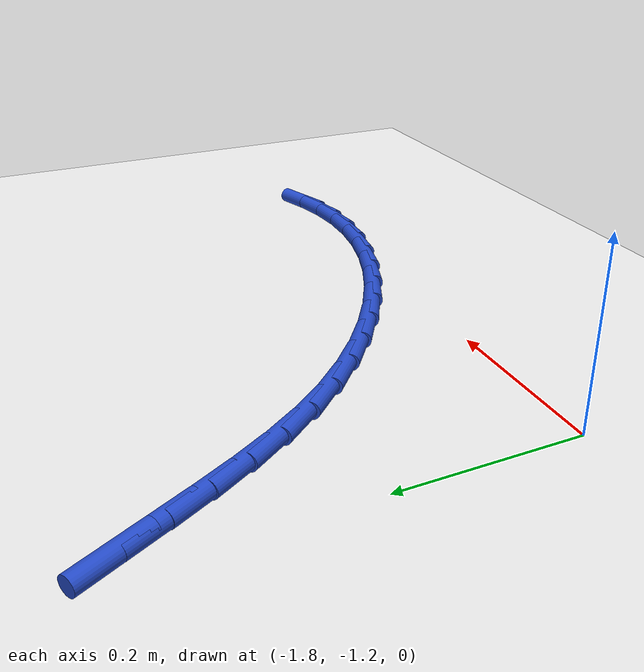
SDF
<sdf version="1.6">
 <world name="default">
  <model name="ground_plane">
   <static>1</static>
   <link name="link">
    <collision name="collision">
     <geometry><plane><normal>0 0 1</normal><size>100 100</size></plane></geometry>
     <surface><friction><ode><mu>100</mu><mu2>50</mu2></ode></friction></surface>
    </collision>
    <visual name="visual">
     <cast_shadows>0</cast_shadows>
     <geometry><plane><normal>0 0 1</normal><size>100 100</size></plane></geometry>
     <material>
      <script><uri>file://media/materials/scripts/gazebo.material</uri><name>Gazebo/WhiteGlow</name></script>
     </material>
    </visual>
   </link>
  </model>
  <model name="line">
   <link name="link_94">
    <pose>-1.7862081489622976 -0.7743923386077 0.01 0 1.57 -1.0999433509527803</pose>
    <collision name="collision">
     <geometry><cylinder><radius>0.01</radius><length>0.08</length></cylinder></geometry>
    </collision>
    <visual name="visual">
     <material>
      <script><name>Gazebo/Blue</name><uri>file://media/materials/scripts/gazebo.material</uri></script>
     </material>
     <geometry><cylinder><radius>0.01</radius><length>0.08</length></cylinder></geometry>
    </visual>
   </link>
   <link name="link_95">
    <pose>-1.7653485098583743 -0.8153707733331547 0.01 0 1.57 -1.0980128240945162</pose>
    <collision name="collision">
     <geometry><cylinder><radius>0.01</radius><length>0.08</length></cylinder></geometry>
    </collision>
    <visual name="visual">
     <material>
      <script><name>Gazebo/Blue</name><uri>file://media/materials/scripts/gazebo.material</uri></script>
     </material>
     <geometry><cylinder><radius>0.01</radius><length>0.08</length></cylinder></geometry>
    </visual>
   </link>
   <link name="link_96">
    <pose>-1.744377399584192 -0.8563722083690302 0.01 0 1.57 -1.0762282834672172</pose>
    <collision name="collision">
     <geometry><cylinder><radius>0.01</radius><length>0.08</length></cylinder></geometry>
    </collision>
    <visual name="visual">
     <material>
      <script><name>Gazebo/Blue</name><uri>file://media/materials/scripts/gazebo.material</uri></script>
     </material>
     <geometry><cylinder><radius>0.01</radius><length>0.08</length></cylinder></geometry>
    </visual>
   </link>
   <link name="link_97">
    <pose>-1.7224845454410733 -0.8969693983839578 0.01 0 1.57 -1.0347250820600675</pose>
    <collision name="collision">
     <geometry><cylinder><radius>0.01</radius><length>0.08</length></cylinder></geometry>
    </collision>
    <visual name="visual">
     <material>
      <script><name>Gazebo/Blue</name><uri>file://media/materials/scripts/gazebo.material</uri></script>
     </material>
     <geometry><cylinder><radius>0.01</radius><length>0.08</length></cylinder></geometry>
    </visual>
   </link>
   <link name="link_98">
    <pose>-1.698859674730343 -0.9367350980465661 0.01 0 1.57 -0.9739318415360029</pose>
    <collision name="collision">
     <geometry><cylinder><radius>0.01</radius><length>0.08</length></cylinder></geometry>
    </collision>
    <visual name="visual">
     <material>
      <script><name>Gazebo/Blue</name><uri>file://media/materials/scripts/gazebo.material</uri></script>
     </material>
     <geometry><cylinder><radius>0.01</radius><length>0.08</length></cylinder></geometry>
    </visual>
   </link>
   <link name="link_99">
    <pose>-1.6726925147533227 -0.9752420620254849 0.01 0 1.57 -0.8952580154243821</pose>
    <collision name="collision">
     <geometry><cylinder><radius>0.01</radius><length>0.08</length></cylinder></geometry>
    </collision>
    <visual name="visual">
     <material>
      <script><name>Gazebo/Blue</name><uri>file://media/materials/scripts/gazebo.material</uri></script>
     </material>
     <geometry><cylinder><radius>0.01</radius><length>0.08</length></cylinder></geometry>
    </visual>
   </link>
   <link name="link_100">
    <pose>-1.6431866674633515 -1.0120641430836972 0.01 0 1.57 -0.8095339877894495</pose>
    <collision name="collision">
     <geometry><cylinder><radius>0.01</radius><length>0.08</length></cylinder></geometry>
    </collision>
    <visual name="visual">
     <material>
      <script><name>Gazebo/Blue</name><uri>file://media/materials/scripts/gazebo.material</uri></script>
     </material>
     <geometry><cylinder><radius>0.01</radius><length>0.08</length></cylinder></geometry>
    </visual>
   </link>
   <link name="link_101">
    <pose>-1.6100722895665418 -1.0468168675915588 0.01 0 1.57 -0.727741137765398</pose>
    <collision name="collision">
     <geometry><cylinder><radius>0.01</radius><length>0.08</length></cylinder></geometry>
    </collision>
    <visual name="visual">
     <material>
      <script><name>Gazebo/Blue</name><uri>file://media/materials/scripts/gazebo.material</uri></script>
     </material>
     <geometry><cylinder><radius>0.01</radius><length>0.08</length></cylinder></geometry>
    </visual>
   </link>
   <link name="link_102">
    <pose>-1.5737562241758765 -1.0791693175344657 0.01 0 1.57 -0.6488036194238563</pose>
    <collision name="collision">
     <geometry><cylinder><radius>0.01</radius><length>0.08</length></cylinder></geometry>
    </collision>
    <visual name="visual">
     <material>
      <script><name>Gazebo/Blue</name><uri>file://media/materials/scripts/gazebo.material</uri></script>
     </material>
     <geometry><cylinder><radius>0.01</radius><length>0.08</length></cylinder></geometry>
    </visual>
   </link>
   <link name="link_103">
    <pose>-1.534689808937433 -1.108794096369592 0.01 0 1.57 -0.5709550870534766</pose>
    <collision name="collision">
     <geometry><cylinder><radius>0.01</radius><length>0.08</length></cylinder></geometry>
    </collision>
    <visual name="visual">
     <material>
      <script><name>Gazebo/Blue</name><uri>file://media/materials/scripts/gazebo.material</uri></script>
     </material>
     <geometry><cylinder><radius>0.01</radius><length>0.08</length></cylinder></geometry>
    </visual>
   </link>
   <link name="link_104">
    <pose>-1.49332438149729 -1.1353638075541115 0.01 0 1.57 -0.4924808938426542</pose>
    <collision name="collision">
     <geometry><cylinder><radius>0.01</radius><length>0.08</length></cylinder></geometry>
    </collision>
    <visual name="visual">
     <material>
      <script><name>Gazebo/Blue</name><uri>file://media/materials/scripts/gazebo.material</uri></script>
     </material>
     <geometry><cylinder><radius>0.01</radius><length>0.08</length></cylinder></geometry>
    </visual>
   </link>
   <link name="link_105">
    <pose>-1.4501112795015232 -1.1585510545452005 0.01 0 1.57 -0.41167182553082954</pose>
    <collision name="collision">
     <geometry><cylinder><radius>0.01</radius><length>0.08</length></cylinder></geometry>
    </collision>
    <visual name="visual">
     <material>
      <script><name>Gazebo/Blue</name><uri>file://media/materials/scripts/gazebo.material</uri></script>
     </material>
     <geometry><cylinder><radius>0.01</radius><length>0.08</length></cylinder></geometry>
    </visual>
   </link>
   <link name="link_106">
    <pose>-1.4055018405962114 -1.1780284408000326 0.01 0 1.57 -0.3267862213521671</pose>
    <collision name="collision">
     <geometry><cylinder><radius>0.01</radius><length>0.08</length></cylinder></geometry>
    </collision>
    <visual name="visual">
     <material>
      <script><name>Gazebo/Blue</name><uri>file://media/materials/scripts/gazebo.material</uri></script>
     </material>
     <geometry><cylinder><radius>0.01</radius><length>0.08</length></cylinder></geometry>
    </visual>
   </link>
   <link name="link_107">
    <pose>-1.3599474024274314 -1.1934685697757825 0.01 0 1.57 -0.23603631850627765</pose>
    <collision name="collision">
     <geometry><cylinder><radius>0.01</radius><length>0.08</length></cylinder></geometry>
    </collision>
    <visual name="visual">
     <material>
      <script><name>Gazebo/Blue</name><uri>file://media/materials/scripts/gazebo.material</uri></script>
     </material>
     <geometry><cylinder><radius>0.01</radius><length>0.08</length></cylinder></geometry>
    </visual>
   </link>
   <link name="link_108">
    <pose>-1.31389930264126 -1.2045440449296252 0.01 0 1.57 -0.1376223688890179</pose>
    <collision name="collision">
     <geometry><cylinder><radius>0.01</radius><length>0.08</length></cylinder></geometry>
    </collision>
    <visual name="visual">
     <material>
      <script><name>Gazebo/Blue</name><uri>file://media/materials/scripts/gazebo.material</uri></script>
     </material>
     <geometry><cylinder><radius>0.01</radius><length>0.08</length></cylinder></geometry>
    </visual>
   </link>
   <link name="link_109">
    <pose>-1.2678088788837762 -1.2109274697187347 0.01 0 1.57 -0.029849620527401942</pose>
    <collision name="collision">
     <geometry><cylinder><radius>0.01</radius><length>0.08</length></cylinder></geometry>
    </collision>
    <visual name="visual">
     <material>
      <script><name>Gazebo/Blue</name><uri>file://media/materials/scripts/gazebo.material</uri></script>
     </material>
     <geometry><cylinder><radius>0.01</radius><length>0.08</length></cylinder></geometry>
    </visual>
   </link>
   <link name="link_110">
    <pose>-1.2221274688010564 -1.2122914476002862 0.01 0 1.57 0.08843173235602107</pose>
    <collision name="collision">
     <geometry><cylinder><radius>0.01</radius><length>0.08</length></cylinder></geometry>
    </collision>
    <visual name="visual">
     <material>
      <script><name>Gazebo/Blue</name><uri>file://media/materials/scripts/gazebo.material</uri></script>
     </material>
     <geometry><cylinder><radius>0.01</radius><length>0.08</length></cylinder></geometry>
    </visual>
   </link>
   <link name="link_111">
    <pose>-1.177301582996212 -1.2083170513056705 0.01 0 1.57 0.20741958589387027</pose>
    <collision name="collision">
     <geometry><cylinder><radius>0.01</radius><length>0.08</length></cylinder></geometry>
    </collision>
    <visual name="visual">
     <material>
      <script><name>Gazebo/Blue</name><uri>file://media/materials/scripts/gazebo.material</uri></script>
     </material>
     <geometry><cylinder><radius>0.01</radius><length>0.08</length></cylinder></geometry>
    </visual>
   </link>
   <link name="link_112">
    <pose>-1.1335373927210795 -1.1991070402769317 0.01 0 1.57 0.31022991307799236</pose>
    <collision name="collision">
     <geometry><cylinder><radius>0.01</radius><length>0.08</length></cylinder></geometry>
    </collision>
    <visual name="visual">
     <material>
      <script><name>Gazebo/Blue</name><uri>file://media/materials/scripts/gazebo.material</uri></script>
     </material>
     <geometry><cylinder><radius>0.01</radius><length>0.08</length></cylinder></geometry>
    </visual>
   </link>
  </model>
 </world>
</sdf>
